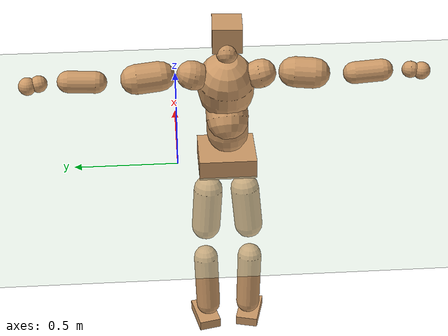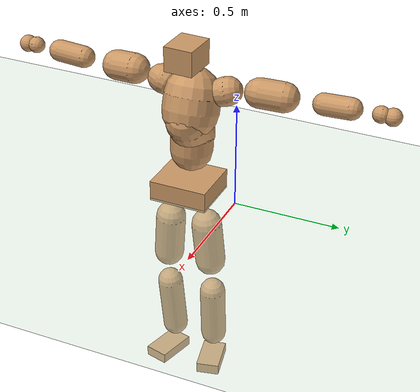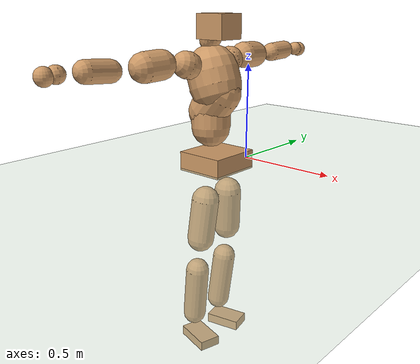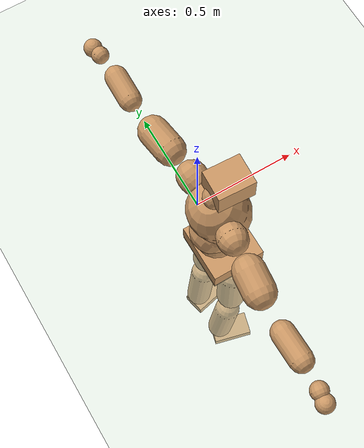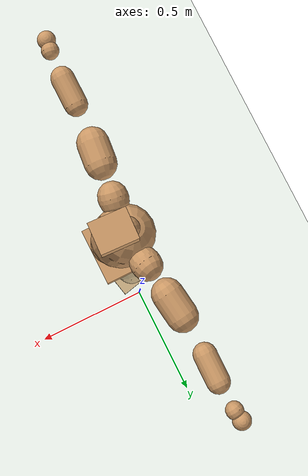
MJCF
<mujoco model="humanoid">
  <compiler coordinate="local" angle="radian"/>
  <default>
    <joint damping="0.0" armature="0.01" stiffness="0.0" limited="true"/>
    <geom conaffinity="1" condim="3" contype="7" margin="0.001" rgba="0.8 0.6 .4 1"/>
  </default>
  <asset>
    <texture type="skybox" builtin="gradient" rgb1=".4 .5 .6" rgb2="0 0 0" width="100" height="100"/>
    <texture builtin="flat" height="1278" mark="cross" markrgb="1 1 1" name="texgeom" random="0.01" rgb1="0.8 0.6 0.4" rgb2="0.8 0.6 0.4" type="cube" width="127"/>
    <texture builtin="checker" height="100" name="texplane" rgb1="0 0 0" rgb2="0.8 0.8 0.8" type="2d" width="100"/>
    <material name="MatPlane" reflectance="0.5" shininess="1" specular="1" texrepeat="60 60" texture="texplane"/>
    <material name="geom" texture="texgeom" texuniform="true"/>
  </asset>
  <worldbody>
    <light cutoff="100" diffuse="1 1 1" dir="-0 0 -1.3" directional="true" exponent="1" pos="0 0 1.3" specular=".1 .1 .1"/>
    <geom conaffinity="1" condim="3" name="floor" pos="0 0 0" rgba="0.8 0.9 0.8 1" size="100 100 .2" type="plane" material="MatPlane"/>
    <body name="Pelvis" pos="-0.0023 -0.2375 0.0513">
      <freejoint name="Pelvis"/>
      <geom type="box" contype="1" conaffinity="1" density="5359.37456" pos="-0.0054 -0.0000 -0.0149" size="0.1251 0.1376 0.0487" quat="1.0000 0.0000 0.0000 0.0013" name="Pelvis"/>
      <body name="L_Hip" pos="0.0024 0.0852 -0.1061">
        <joint name="L_Hip_x" type="hinge" pos="0 0 0" axis="1 0 0" stiffness="1600" damping="160" armature="0.02" range="-180.0000 180.0000"/>
        <joint name="L_Hip_y" type="hinge" pos="0 0 0" axis="0 1 0" stiffness="1600" damping="160" armature="0.02" range="-180.0000 180.0000"/>
        <joint name="L_Hip_z" type="hinge" pos="0 0 0" axis="0 0 1" stiffness="1600" damping="160" armature="0.02" range="-180.0000 180.0000"/>
        <geom type="capsule" contype="1" conaffinity="1" density="2040.816327" size="0.0712" fromto="-0.0073 0.0065 -0.1007 -0.0227 0.0202 -0.3119" name="L_Hip"/>
        <body name="L_Knee" pos="-0.0301 0.0267 -0.4125">
          <joint name="L_Knee_x" type="hinge" pos="0 0 0" axis="1 0 0" stiffness="1600" damping="160" armature="0.02" range="-180.0000 180.0000"/>
          <joint name="L_Knee_y" type="hinge" pos="0 0 0" axis="0 1 0" stiffness="1600" damping="160" armature="0.02" range="-180.0000 180.0000"/>
          <joint name="L_Knee_z" type="hinge" pos="0 0 0" axis="0 0 1" stiffness="1600" damping="160" armature="0.02" range="-180.0000 180.0000"/>
          <geom type="capsule" contype="1" conaffinity="1" density="1234.567901" size="0.061" fromto="-0.0109 -0.0026 -0.0903 -0.0447 -0.0108 -0.3705" name="L_Knee"/>
          <body name="L_Ankle" pos="-0.0557 -0.0134 -0.4608">
            <joint name="L_Ankle_x" type="hinge" pos="0 0 0" axis="1 0 0" stiffness="1600" damping="160" armature="0.02" range="-180.0000 180.0000"/>
            <joint name="L_Ankle_y" type="hinge" pos="0 0 0" axis="0 1 0" stiffness="1600" damping="160" armature="0.02" range="-180.0000 180.0000"/>
            <joint name="L_Ankle_z" type="hinge" pos="0 0 0" axis="0 0 1" stiffness="1600" damping="160" armature="0.02" range="-180.0000 180.0000"/>
            <geom type="box" contype="1" conaffinity="1" density="1000.000003" pos="0.0649 0.0144 -0.0336" size="0.0934 0.0551 0.0259" quat="0.9940 0.0000 0.0000 0.1091" name="L_Ankle"/>
            <body name="L_Toe" pos="0.1297 0.0288 -0.0673">
              <joint name="L_Toe_x" type="hinge" pos="0 0 0" axis="1 0 0" stiffness="1000" damping="100" armature="0.02" range="-180.0000 180.0000"/>
              <joint name="L_Toe_y" type="hinge" pos="0 0 0" axis="0 1 0" stiffness="1000" damping="100" armature="0.02" range="-180.0000 180.0000"/>
              <joint name="L_Toe_z" type="hinge" pos="0 0 0" axis="0 0 1" stiffness="1000" damping="100" armature="0.02" range="-180.0000 180.0000"/>
              <geom type="box" contype="1" conaffinity="1" density="8177821.356838" pos="0.0000 0.0000 0.0325" size="0.0012 0.0028 0.0012" quat="0.9934 0.0000 0.0000 0.1147" name="L_Toe"/>
            </body>
          </body>
        </body>
      </body>
      <body name="R_Hip" pos="0.0073 -0.0819 -0.1088">
        <joint name="R_Hip_x" type="hinge" pos="0 0 0" axis="1 0 0" stiffness="1600" damping="160" armature="0.02" range="-180.0000 180.0000"/>
        <joint name="R_Hip_y" type="hinge" pos="0 0 0" axis="0 1 0" stiffness="1600" damping="160" armature="0.02" range="-180.0000 180.0000"/>
        <joint name="R_Hip_z" type="hinge" pos="0 0 0" axis="0 0 1" stiffness="1600" damping="160" armature="0.02" range="-180.0000 180.0000"/>
        <geom type="capsule" contype="1" conaffinity="1" density="2040.816327" size="0.0701" fromto="-0.0075 -0.0091 -0.0994 -0.0236 -0.0287 -0.3130" name="R_Hip"/>
        <body name="R_Knee" pos="-0.0312 -0.0378 -0.4124">
          <joint name="R_Knee_x" type="hinge" pos="0 0 0" axis="1 0 0" stiffness="1600" damping="160" armature="0.02" range="-180.0000 180.0000"/>
          <joint name="R_Knee_y" type="hinge" pos="0 0 0" axis="0 1 0" stiffness="1600" damping="160" armature="0.02" range="-180.0000 180.0000"/>
          <joint name="R_Knee_z" type="hinge" pos="0 0 0" axis="0 0 1" stiffness="1600" damping="160" armature="0.02" range="-180.0000 180.0000"/>
          <geom type="capsule" contype="1" conaffinity="1" density="1234.567901" size="0.0606" fromto="-0.0105 0.0029 -0.0899 -0.0433 0.0120 -0.3704" name="R_Knee"/>
          <body name="R_Ankle" pos="-0.0538 0.0149 -0.4603">
            <joint name="R_Ankle_x" type="hinge" pos="0 0 0" axis="1 0 0" stiffness="1600" damping="160" armature="0.02" range="-180.0000 180.0000"/>
            <joint name="R_Ankle_y" type="hinge" pos="0 0 0" axis="0 1 0" stiffness="1600" damping="160" armature="0.02" range="-180.0000 180.0000"/>
            <joint name="R_Ankle_z" type="hinge" pos="0 0 0" axis="0 0 1" stiffness="1600" damping="160" armature="0.02" range="-180.0000 180.0000"/>
            <geom type="box" contype="1" conaffinity="1" density="999.999967" pos="0.0679 -0.0174 -0.0283" size="0.096 0.056 0.025" quat="0.9921 0.0000 0.0000 -0.1252" name="R_Ankle"/>
            <body name="R_Toe" pos="0.1358 -0.0348 -0.0566">
              <joint name="R_Toe_x" type="hinge" pos="0 0 0" axis="1 0 0" stiffness="1000" damping="100" armature="0.02" range="-180.0000 180.0000"/>
              <joint name="R_Toe_y" type="hinge" pos="0 0 0" axis="0 1 0" stiffness="1000" damping="100" armature="0.02" range="-180.0000 180.0000"/>
              <joint name="R_Toe_z" type="hinge" pos="0 0 0" axis="0 0 1" stiffness="1000" damping="100" armature="0.02" range="-180.0000 180.0000"/>
              <geom type="box" contype="1" conaffinity="1" density="7461358.074809" pos="0.0000 0.0000 0.0309" size="0.0012 0.0028 0.0014" quat="0.9932 0.0000 0.0000 -0.1167" name="R_Toe"/>
            </body>
          </body>
        </body>
      </body>
      <body name="Torso" pos="-0.0423 -0.0034 0.1253">
        <joint name="Torso_x" type="hinge" pos="0 0 0" axis="1 0 0" stiffness="2000" damping="200" armature="0.02" range="-180.0000 180.0000"/>
        <joint name="Torso_y" type="hinge" pos="0 0 0" axis="0 1 0" stiffness="2000" damping="200" armature="0.02" range="-180.0000 180.0000"/>
        <joint name="Torso_z" type="hinge" pos="0 0 0" axis="0 0 1" stiffness="2000" damping="200" armature="0.02" range="-180.0000 180.0000"/>
        <geom type="capsule" contype="1" conaffinity="1" density="2040.816327" size="0.0992" fromto="-0.0035 0.0033 0.0991 -0.0009 0.0009 0.0267" name="Torso"/>
        <body name="Spine" pos="-0.0044 0.0042 0.1258">
          <joint name="Spine_x" type="hinge" pos="0 0 0" axis="1 0 0" stiffness="2000" damping="200" armature="0.02" range="-180.0000 180.0000"/>
          <joint name="Spine_y" type="hinge" pos="0 0 0" axis="0 1 0" stiffness="2000" damping="200" armature="0.02" range="-180.0000 180.0000"/>
          <joint name="Spine_z" type="hinge" pos="0 0 0" axis="0 0 1" stiffness="2000" damping="200" armature="0.02" range="-180.0000 180.0000"/>
          <geom type="capsule" contype="1" conaffinity="1" density="2040.816327" size="0.0997" fromto="0.0640 0.0046 0.0763 -0.0173 -0.0012 -0.0206" name="Spine"/>
          <body name="Chest" pos="0.0467 0.0033 0.0556">
            <joint name="Chest_x" type="hinge" pos="0 0 0" axis="1 0 0" stiffness="2000" damping="200" armature="0.02" range="-180.0000 180.0000"/>
            <joint name="Chest_y" type="hinge" pos="0 0 0" axis="0 1 0" stiffness="2000" damping="200" armature="0.02" range="-180.0000 180.0000"/>
            <joint name="Chest_z" type="hinge" pos="0 0 0" axis="0 0 1" stiffness="2000" damping="200" armature="0.02" range="-180.0000 180.0000"/>
            <geom type="capsule" contype="1" conaffinity="1" density="2040.816327" size="0.131" fromto="-0.0424 -0.0000 0.1239 -0.0194 -0.0000 0.0566" name="Chest"/>
            <body name="Neck" pos="-0.0754 -0.0007 0.25">
              <joint name="Neck_x" type="hinge" pos="0 0 0" axis="1 0 0" stiffness="1000" damping="100" armature="0.02" range="-180.0000 180.0000"/>
              <joint name="Neck_y" type="hinge" pos="0 0 0" axis="0 1 0" stiffness="1000" damping="100" armature="0.02" range="-180.0000 180.0000"/>
              <joint name="Neck_z" type="hinge" pos="0 0 0" axis="0 0 1" stiffness="1000" damping="100" armature="0.02" range="-180.0000 180.0000"/>
              <geom type="capsule" contype="1" conaffinity="1" density="1000" size="0.0504" fromto="0.0339 -0.0029 0.0372 0.0183 -0.0015 0.0201" name="Neck"/>
              <body name="Head" pos="0.0522 -0.0044 0.0573">
                <joint name="Head_x" type="hinge" pos="0 0 0" axis="1 0 0" stiffness="1000" damping="100" armature="0.02" range="-180.0000 180.0000"/>
                <joint name="Head_y" type="hinge" pos="0 0 0" axis="0 1 0" stiffness="1000" damping="100" armature="0.02" range="-180.0000 180.0000"/>
                <joint name="Head_z" type="hinge" pos="0 0 0" axis="0 0 1" stiffness="1000" damping="100" armature="0.02" range="-180.0000 180.0000"/>
                <geom type="box" contype="1" conaffinity="1" density="2249.999916" pos="0.0271 -0.0012 0.0296" size="0.0825 0.0687 0.0592" quat="0.9998 0.0000 0.0000 -0.0223" name="Head"/>
              </body>
            </body>
            <body name="L_Thorax" pos="-0.0538 0.1006 0.1465">
              <joint name="L_Thorax_x" type="hinge" pos="0 0 0" axis="1 0 0" stiffness="1000" damping="100" armature="0.02" range="-180.0000 180.0000"/>
              <joint name="L_Thorax_y" type="hinge" pos="0 0 0" axis="0 1 0" stiffness="1000" damping="100" armature="0.02" range="-180.0000 180.0000"/>
              <joint name="L_Thorax_z" type="hinge" pos="0 0 0" axis="0 0 1" stiffness="1000" damping="100" armature="0.02" range="-180.0000 180.0000"/>
              <geom type="capsule" contype="1" conaffinity="1" density="1000" size="0.0666" fromto="-0.0107 0.0621 0.0215 -0.0075 0.0432 0.0150" name="L_Thorax"/>
              <body name="L_Shoulder" pos="-0.0182 0.1053 0.0365">
                <joint name="L_Shoulder_x" type="hinge" pos="0 0 0" axis="1 0 0" stiffness="1000" damping="100" armature="0.02" range="-720.0000 720.0000"/>
                <joint name="L_Shoulder_y" type="hinge" pos="0 0 0" axis="0 1 0" stiffness="1000" damping="100" armature="0.02" range="-720.0000 720.0000"/>
                <joint name="L_Shoulder_z" type="hinge" pos="0 0 0" axis="0 0 1" stiffness="1000" damping="100" armature="0.02" range="-720.0000 720.0000"/>
                <geom type="capsule" contype="1" conaffinity="1" density="1000" size="0.0684" fromto="-0.0131 0.0975 -0.0040 -0.0281 0.2086 -0.0087" name="L_Shoulder"/>
                <body name="L_Elbow" pos="-0.0412 0.3061 -0.0127">
                  <joint name="L_Elbow_x" type="hinge" pos="0 0 0" axis="1 0 0" stiffness="1000" damping="100" armature="0.02" range="-720.0000 720.0000"/>
                  <joint name="L_Elbow_y" type="hinge" pos="0 0 0" axis="0 1 0" stiffness="1000" damping="100" armature="0.02" range="-720.0000 720.0000"/>
                  <joint name="L_Elbow_z" type="hinge" pos="0 0 0" axis="0 0 1" stiffness="1000" damping="100" armature="0.02" range="-720.0000 720.0000"/>
                  <geom type="capsule" contype="1" conaffinity="1" density="1000" size="0.0502" fromto="0.0010 0.0801 0.0039 0.0026 0.2041 0.0099" name="L_Elbow"/>
                  <body name="L_Wrist" pos="0.0036 0.2842 0.0139">
                    <joint name="L_Wrist_x" type="hinge" pos="0 0 0" axis="1 0 0" stiffness="600" damping="60" armature="0.02" range="-180.0000 180.0000"/>
                    <joint name="L_Wrist_y" type="hinge" pos="0 0 0" axis="0 1 0" stiffness="600" damping="60" armature="0.02" range="-180.0000 180.0000"/>
                    <joint name="L_Wrist_z" type="hinge" pos="0 0 0" axis="0 0 1" stiffness="600" damping="60" armature="0.02" range="-180.0000 180.0000"/>
                    <geom type="capsule" contype="1" conaffinity="1" density="1000" size="0.0382" fromto="-0.0080 0.0493 -0.0057 -0.0083 0.0513 -0.0060" name="L_Wrist"/>
                    <body name="L_Hand" pos="-0.0163 0.1007 -0.0117">
                      <joint name="L_Hand_x" type="hinge" pos="0 0 0" axis="1 0 0" stiffness="600" damping="60" armature="0.02" range="-180.0000 180.0000"/>
                      <joint name="L_Hand_y" type="hinge" pos="0 0 0" axis="0 1 0" stiffness="600" damping="60" armature="0.02" range="-180.0000 180.0000"/>
                      <joint name="L_Hand_z" type="hinge" pos="0 0 0" axis="0 0 1" stiffness="600" damping="60" armature="0.02" range="-180.0000 180.0000"/>
                      <geom type="sphere" contype="1" conaffinity="1" density="1000" size="0.0405" pos="0.0000 0.0000 0.0000" name="L_Hand"/>
                    </body>
                  </body>
                </body>
              </body>
            </body>
            <body name="R_Thorax" pos="-0.0562 -0.1 0.145">
              <joint name="R_Thorax_x" type="hinge" pos="0 0 0" axis="1 0 0" stiffness="1000" damping="100" armature="0.02" range="-180.0000 180.0000"/>
              <joint name="R_Thorax_y" type="hinge" pos="0 0 0" axis="0 1 0" stiffness="1000" damping="100" armature="0.02" range="-180.0000 180.0000"/>
              <joint name="R_Thorax_z" type="hinge" pos="0 0 0" axis="0 0 1" stiffness="1000" damping="100" armature="0.02" range="-180.0000 180.0000"/>
              <geom type="capsule" contype="1" conaffinity="1" density="1000" size="0.0656" fromto="-0.0085 -0.0616 0.0209 -0.0062 -0.0452 0.0154" name="R_Thorax"/>
              <body name="R_Shoulder" pos="-0.0147 -0.1068 0.0363">
                <joint name="R_Shoulder_x" type="hinge" pos="0 0 0" axis="1 0 0" stiffness="1000" damping="100" armature="0.02" range="-720.0000 720.0000"/>
                <joint name="R_Shoulder_y" type="hinge" pos="0 0 0" axis="0 1 0" stiffness="1000" damping="100" armature="0.02" range="-720.0000 720.0000"/>
                <joint name="R_Shoulder_z" type="hinge" pos="0 0 0" axis="0 0 1" stiffness="1000" damping="100" armature="0.02" range="-720.0000 720.0000"/>
                <geom type="capsule" contype="1" conaffinity="1" density="1000" size="0.0704" fromto="-0.0100 -0.0998 -0.0055 -0.0194 -0.1944 -0.0107" name="R_Shoulder"/>
                <body name="R_Elbow" pos="-0.0294 -0.2941 -0.0162">
                  <joint name="R_Elbow_x" type="hinge" pos="0 0 0" axis="1 0 0" stiffness="1000" damping="100" armature="0.02" range="-720.0000 720.0000"/>
                  <joint name="R_Elbow_y" type="hinge" pos="0 0 0" axis="0 1 0" stiffness="1000" damping="100" armature="0.02" range="-720.0000 720.0000"/>
                  <joint name="R_Elbow_z" type="hinge" pos="0 0 0" axis="0 0 1" stiffness="1000" damping="100" armature="0.02" range="-720.0000 720.0000"/>
                  <geom type="capsule" contype="1" conaffinity="1" density="1000" size="0.051" fromto="0.0010 -0.0808 0.0055 0.0026 -0.2080 0.0142" name="R_Elbow"/>
                  <body name="R_Wrist" pos="0.0036 -0.2889 0.0198">
                    <joint name="R_Wrist_x" type="hinge" pos="0 0 0" axis="1 0 0" stiffness="600" damping="60" armature="0.02" range="-180.0000 180.0000"/>
                    <joint name="R_Wrist_y" type="hinge" pos="0 0 0" axis="0 1 0" stiffness="600" damping="60" armature="0.02" range="-180.0000 180.0000"/>
                    <joint name="R_Wrist_z" type="hinge" pos="0 0 0" axis="0 0 1" stiffness="600" damping="60" armature="0.02" range="-180.0000 180.0000"/>
                    <geom type="capsule" contype="1" conaffinity="1" density="1000" size="0.0387" fromto="-0.0065 -0.0491 -0.0044 -0.0068 -0.0510 -0.0045" name="R_Wrist"/>
                    <body name="R_Hand" pos="-0.0133 -0.1001 -0.0089">
                      <joint name="R_Hand_x" type="hinge" pos="0 0 0" axis="1 0 0" stiffness="600" damping="60" armature="0.02" range="-180.0000 180.0000"/>
                      <joint name="R_Hand_y" type="hinge" pos="0 0 0" axis="0 1 0" stiffness="600" damping="60" armature="0.02" range="-180.0000 180.0000"/>
                      <joint name="R_Hand_z" type="hinge" pos="0 0 0" axis="0 0 1" stiffness="600" damping="60" armature="0.02" range="-180.0000 180.0000"/>
                      <geom type="sphere" contype="1" conaffinity="1" density="1000" size="0.0402" pos="0.0000 0.0000 0.0000" name="R_Hand"/>
                    </body>
                  </body>
                </body>
              </body>
            </body>
          </body>
        </body>
      </body>
    </body>
  </worldbody>
  <actuator>
    <motor name="L_Hip_x" joint="L_Hip_x" gear="500"/>
    <motor name="L_Hip_y" joint="L_Hip_y" gear="500"/>
    <motor name="L_Hip_z" joint="L_Hip_z" gear="500"/>
    <motor name="L_Knee_x" joint="L_Knee_x" gear="500"/>
    <motor name="L_Knee_y" joint="L_Knee_y" gear="500"/>
    <motor name="L_Knee_z" joint="L_Knee_z" gear="500"/>
    <motor name="L_Ankle_x" joint="L_Ankle_x" gear="500"/>
    <motor name="L_Ankle_y" joint="L_Ankle_y" gear="500"/>
    <motor name="L_Ankle_z" joint="L_Ankle_z" gear="500"/>
    <motor name="L_Toe_x" joint="L_Toe_x" gear="500"/>
    <motor name="L_Toe_y" joint="L_Toe_y" gear="500"/>
    <motor name="L_Toe_z" joint="L_Toe_z" gear="500"/>
    <motor name="R_Hip_x" joint="R_Hip_x" gear="500"/>
    <motor name="R_Hip_y" joint="R_Hip_y" gear="500"/>
    <motor name="R_Hip_z" joint="R_Hip_z" gear="500"/>
    <motor name="R_Knee_x" joint="R_Knee_x" gear="500"/>
    <motor name="R_Knee_y" joint="R_Knee_y" gear="500"/>
    <motor name="R_Knee_z" joint="R_Knee_z" gear="500"/>
    <motor name="R_Ankle_x" joint="R_Ankle_x" gear="500"/>
    <motor name="R_Ankle_y" joint="R_Ankle_y" gear="500"/>
    <motor name="R_Ankle_z" joint="R_Ankle_z" gear="500"/>
    <motor name="R_Toe_x" joint="R_Toe_x" gear="500"/>
    <motor name="R_Toe_y" joint="R_Toe_y" gear="500"/>
    <motor name="R_Toe_z" joint="R_Toe_z" gear="500"/>
    <motor name="Torso_x" joint="Torso_x" gear="500"/>
    <motor name="Torso_y" joint="Torso_y" gear="500"/>
    <motor name="Torso_z" joint="Torso_z" gear="500"/>
    <motor name="Spine_x" joint="Spine_x" gear="500"/>
    <motor name="Spine_y" joint="Spine_y" gear="500"/>
    <motor name="Spine_z" joint="Spine_z" gear="500"/>
    <motor name="Chest_x" joint="Chest_x" gear="500"/>
    <motor name="Chest_y" joint="Chest_y" gear="500"/>
    <motor name="Chest_z" joint="Chest_z" gear="500"/>
    <motor name="Neck_x" joint="Neck_x" gear="500"/>
    <motor name="Neck_y" joint="Neck_y" gear="500"/>
    <motor name="Neck_z" joint="Neck_z" gear="500"/>
    <motor name="Head_x" joint="Head_x" gear="500"/>
    <motor name="Head_y" joint="Head_y" gear="500"/>
    <motor name="Head_z" joint="Head_z" gear="500"/>
    <motor name="L_Thorax_x" joint="L_Thorax_x" gear="500"/>
    <motor name="L_Thorax_y" joint="L_Thorax_y" gear="500"/>
    <motor name="L_Thorax_z" joint="L_Thorax_z" gear="500"/>
    <motor name="L_Shoulder_x" joint="L_Shoulder_x" gear="500"/>
    <motor name="L_Shoulder_y" joint="L_Shoulder_y" gear="500"/>
    <motor name="L_Shoulder_z" joint="L_Shoulder_z" gear="500"/>
    <motor name="L_Elbow_x" joint="L_Elbow_x" gear="500"/>
    <motor name="L_Elbow_y" joint="L_Elbow_y" gear="500"/>
    <motor name="L_Elbow_z" joint="L_Elbow_z" gear="500"/>
    <motor name="L_Wrist_x" joint="L_Wrist_x" gear="500"/>
    <motor name="L_Wrist_y" joint="L_Wrist_y" gear="500"/>
    <motor name="L_Wrist_z" joint="L_Wrist_z" gear="500"/>
    <motor name="L_Hand_x" joint="L_Hand_x" gear="500"/>
    <motor name="L_Hand_y" joint="L_Hand_y" gear="500"/>
    <motor name="L_Hand_z" joint="L_Hand_z" gear="500"/>
    <motor name="R_Thorax_x" joint="R_Thorax_x" gear="500"/>
    <motor name="R_Thorax_y" joint="R_Thorax_y" gear="500"/>
    <motor name="R_Thorax_z" joint="R_Thorax_z" gear="500"/>
    <motor name="R_Shoulder_x" joint="R_Shoulder_x" gear="500"/>
    <motor name="R_Shoulder_y" joint="R_Shoulder_y" gear="500"/>
    <motor name="R_Shoulder_z" joint="R_Shoulder_z" gear="500"/>
    <motor name="R_Elbow_x" joint="R_Elbow_x" gear="500"/>
    <motor name="R_Elbow_y" joint="R_Elbow_y" gear="500"/>
    <motor name="R_Elbow_z" joint="R_Elbow_z" gear="500"/>
    <motor name="R_Wrist_x" joint="R_Wrist_x" gear="500"/>
    <motor name="R_Wrist_y" joint="R_Wrist_y" gear="500"/>
    <motor name="R_Wrist_z" joint="R_Wrist_z" gear="500"/>
    <motor name="R_Hand_x" joint="R_Hand_x" gear="500"/>
    <motor name="R_Hand_y" joint="R_Hand_y" gear="500"/>
    <motor name="R_Hand_z" joint="R_Hand_z" gear="500"/>
  </actuator>
  <contact>
    <exclude body1="Torso" body2="Chest"/>
    <exclude body1="Head" body2="Chest"/>
    <exclude body1="R_Knee" body2="R_Toe"/>
    <exclude body1="R_Knee" body2="L_Ankle"/>
    <exclude body1="R_Knee" body2="L_Toe"/>
    <exclude body1="L_Knee" body2="L_Toe"/>
    <exclude body1="L_Knee" body2="R_Ankle"/>
    <exclude body1="L_Knee" body2="R_Toe"/>
    <exclude body1="L_Shoulder" body2="Chest"/>
    <exclude body1="R_Shoulder" body2="Chest"/>
  </contact>
  <sensor/>
  <size njmax="700" nconmax="700"/>
</mujoco>
